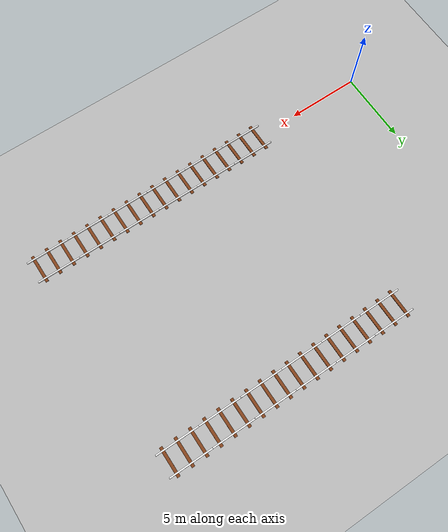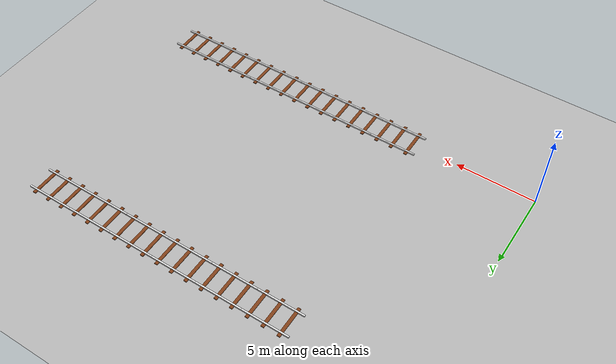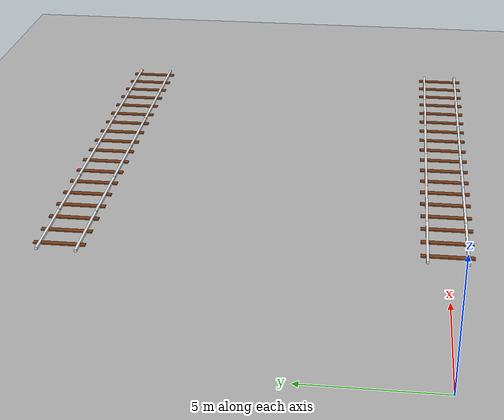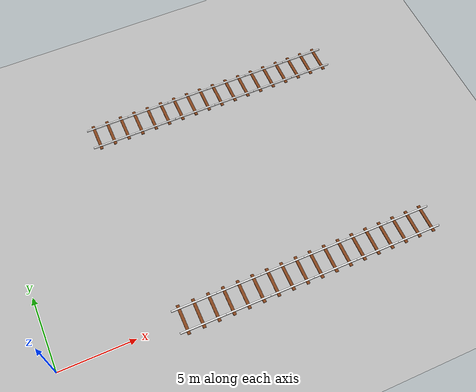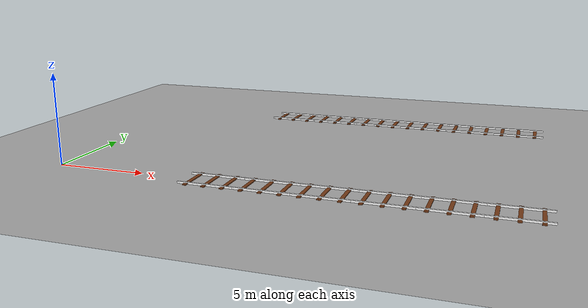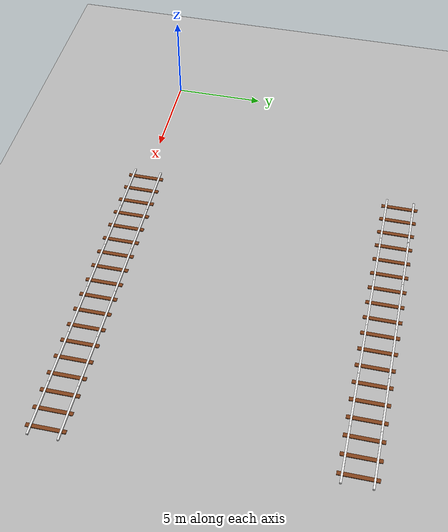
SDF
<sdf version="1.10">
 <world name="myworld">
  <model name="rail4">
   <static>true</static>
   <pose>9 0 0 0 0 0</pose>
   <link name="rail_link">
    <visual name="rail_left">
     <pose>0 0.75 0.050000000000000003 0 0 0</pose>
     <geometry><box><size>3 0.10000000000000001 0.10000000000000001</size></box></geometry>
     <material>
      <ambient>0.800000012 0.800000012 0.800000012 1</ambient>
      <diffuse>0.899999976 0.899999976 0.899999976 1</diffuse>
     </material>
    </visual>
    <visual name="rail_right">
     <pose>0 -0.75 0.050000000000000003 0 0 0</pose>
     <geometry><box><size>3 0.10000000000000001 0.10000000000000001</size></box></geometry>
     <material>
      <ambient>0.800000012 0.800000012 0.800000012 1</ambient>
      <diffuse>0.899999976 0.899999976 0.899999976 1</diffuse>
     </material>
    </visual>
    <visual name="traverse_1">
     <pose>1 0 0.025000000000000001 0 0 0</pose>
     <geometry><box><size>0.20000000000000001 2 0.050000000000000003</size></box></geometry>
     <material>
      <ambient>0.400000006 0.200000003 0.100000001 1</ambient>
      <diffuse>0.5 0.25 0.100000001 1</diffuse>
     </material>
    </visual>
    <visual name="traverse_2">
     <pose>0 0 0.025000000000000001 0 0 0</pose>
     <geometry><box><size>0.20000000000000001 2 0.050000000000000003</size></box></geometry>
     <material>
      <ambient>0.400000006 0.200000003 0.100000001 1</ambient>
      <diffuse>0.5 0.25 0.100000001 1</diffuse>
     </material>
    </visual>
    <visual name="traverse_3">
     <pose>-1 0 0.025000000000000001 0 0 0</pose>
     <geometry><box><size>0.20000000000000001 2 0.050000000000000003</size></box></geometry>
     <material>
      <ambient>0.400000006 0.200000003 0.100000001 1</ambient>
      <diffuse>0.5 0.25 0.100000001 1</diffuse>
     </material>
    </visual>
    <inertial>
     <mass>1</mass>
     <inertia><ixx>1</ixx><ixy>0</ixy><ixz>0</ixz><iyy>1</iyy><iyz>0</iyz><izz>1</izz></inertia>
    </inertial>
   </link>
  </model>
  <model name="rail5">
   <static>true</static>
   <pose>12 0 0 0 0 0</pose>
   <link name="rail_link">
    <visual name="rail_left">
     <pose>0 0.75 0.050000000000000003 0 0 0</pose>
     <geometry><box><size>3 0.10000000000000001 0.10000000000000001</size></box></geometry>
     <material>
      <ambient>0.800000012 0.800000012 0.800000012 1</ambient>
      <diffuse>0.899999976 0.899999976 0.899999976 1</diffuse>
     </material>
    </visual>
    <visual name="rail_right">
     <pose>0 -0.75 0.050000000000000003 0 0 0</pose>
     <geometry><box><size>3 0.10000000000000001 0.10000000000000001</size></box></geometry>
     <material>
      <ambient>0.800000012 0.800000012 0.800000012 1</ambient>
      <diffuse>0.899999976 0.899999976 0.899999976 1</diffuse>
     </material>
    </visual>
    <visual name="traverse_1">
     <pose>1 0 0.025000000000000001 0 0 0</pose>
     <geometry><box><size>0.20000000000000001 2 0.050000000000000003</size></box></geometry>
     <material>
      <ambient>0.400000006 0.200000003 0.100000001 1</ambient>
      <diffuse>0.5 0.25 0.100000001 1</diffuse>
     </material>
    </visual>
    <visual name="traverse_2">
     <pose>0 0 0.025000000000000001 0 0 0</pose>
     <geometry><box><size>0.20000000000000001 2 0.050000000000000003</size></box></geometry>
     <material>
      <ambient>0.400000006 0.200000003 0.100000001 1</ambient>
      <diffuse>0.5 0.25 0.100000001 1</diffuse>
     </material>
    </visual>
    <visual name="traverse_3">
     <pose>-1 0 0.025000000000000001 0 0 0</pose>
     <geometry><box><size>0.20000000000000001 2 0.050000000000000003</size></box></geometry>
     <material>
      <ambient>0.400000006 0.200000003 0.100000001 1</ambient>
      <diffuse>0.5 0.25 0.100000001 1</diffuse>
     </material>
    </visual>
    <inertial>
     <mass>1</mass>
     <inertia><ixx>1</ixx><ixy>0</ixy><ixz>0</ixz><iyy>1</iyy><iyz>0</iyz><izz>1</izz></inertia>
    </inertial>
   </link>
  </model>
  <model name="rail6">
   <static>true</static>
   <pose>15 0 0 0 0 0</pose>
   <link name="rail_link">
    <visual name="rail_left">
     <pose>0 0.75 0.050000000000000003 0 0 0</pose>
     <geometry><box><size>3 0.10000000000000001 0.10000000000000001</size></box></geometry>
     <material>
      <ambient>0.800000012 0.800000012 0.800000012 1</ambient>
      <diffuse>0.899999976 0.899999976 0.899999976 1</diffuse>
     </material>
    </visual>
    <visual name="rail_right">
     <pose>0 -0.75 0.050000000000000003 0 0 0</pose>
     <geometry><box><size>3 0.10000000000000001 0.10000000000000001</size></box></geometry>
     <material>
      <ambient>0.800000012 0.800000012 0.800000012 1</ambient>
      <diffuse>0.899999976 0.899999976 0.899999976 1</diffuse>
     </material>
    </visual>
    <visual name="traverse_1">
     <pose>1 0 0.025000000000000001 0 0 0</pose>
     <geometry><box><size>0.20000000000000001 2 0.050000000000000003</size></box></geometry>
     <material>
      <ambient>0.400000006 0.200000003 0.100000001 1</ambient>
      <diffuse>0.5 0.25 0.100000001 1</diffuse>
     </material>
    </visual>
    <visual name="traverse_2">
     <pose>0 0 0.025000000000000001 0 0 0</pose>
     <geometry><box><size>0.20000000000000001 2 0.050000000000000003</size></box></geometry>
     <material>
      <ambient>0.400000006 0.200000003 0.100000001 1</ambient>
      <diffuse>0.5 0.25 0.100000001 1</diffuse>
     </material>
    </visual>
    <visual name="traverse_3">
     <pose>-1 0 0.025000000000000001 0 0 0</pose>
     <geometry><box><size>0.20000000000000001 2 0.050000000000000003</size></box></geometry>
     <material>
      <ambient>0.400000006 0.200000003 0.100000001 1</ambient>
      <diffuse>0.5 0.25 0.100000001 1</diffuse>
     </material>
    </visual>
    <inertial>
     <mass>1</mass>
     <inertia><ixx>1</ixx><ixy>0</ixy><ixz>0</ixz><iyy>1</iyy><iyz>0</iyz><izz>1</izz></inertia>
    </inertial>
   </link>
  </model>
  <model name="rail7">
   <static>true</static>
   <pose>18 0 0 0 0 0</pose>
   <link name="rail_link">
    <visual name="rail_left">
     <pose>0 0.75 0.050000000000000003 0 0 0</pose>
     <geometry><box><size>3 0.10000000000000001 0.10000000000000001</size></box></geometry>
     <material>
      <ambient>0.800000012 0.800000012 0.800000012 1</ambient>
      <diffuse>0.899999976 0.899999976 0.899999976 1</diffuse>
     </material>
    </visual>
    <visual name="rail_right">
     <pose>0 -0.75 0.050000000000000003 0 0 0</pose>
     <geometry><box><size>3 0.10000000000000001 0.10000000000000001</size></box></geometry>
     <material>
      <ambient>0.800000012 0.800000012 0.800000012 1</ambient>
      <diffuse>0.899999976 0.899999976 0.899999976 1</diffuse>
     </material>
    </visual>
    <visual name="traverse_1">
     <pose>1 0 0.025000000000000001 0 0 0</pose>
     <geometry><box><size>0.20000000000000001 2 0.050000000000000003</size></box></geometry>
     <material>
      <ambient>0.400000006 0.200000003 0.100000001 1</ambient>
      <diffuse>0.5 0.25 0.100000001 1</diffuse>
     </material>
    </visual>
    <visual name="traverse_2">
     <pose>0 0 0.025000000000000001 0 0 0</pose>
     <geometry><box><size>0.20000000000000001 2 0.050000000000000003</size></box></geometry>
     <material>
      <ambient>0.400000006 0.200000003 0.100000001 1</ambient>
      <diffuse>0.5 0.25 0.100000001 1</diffuse>
     </material>
    </visual>
    <visual name="traverse_3">
     <pose>-1 0 0.025000000000000001 0 0 0</pose>
     <geometry><box><size>0.20000000000000001 2 0.050000000000000003</size></box></geometry>
     <material>
      <ambient>0.400000006 0.200000003 0.100000001 1</ambient>
      <diffuse>0.5 0.25 0.100000001 1</diffuse>
     </material>
    </visual>
    <inertial>
     <mass>1</mass>
     <inertia><ixx>1</ixx><ixy>0</ixy><ixz>0</ixz><iyy>1</iyy><iyz>0</iyz><izz>1</izz></inertia>
    </inertial>
   </link>
  </model>
  <model name="rail8">
   <static>true</static>
   <pose>21 0 0 0 0 0</pose>
   <link name="rail_link">
    <visual name="rail_left">
     <pose>0 0.75 0.050000000000000003 0 0 0</pose>
     <geometry><box><size>3 0.10000000000000001 0.10000000000000001</size></box></geometry>
     <material>
      <ambient>0.800000012 0.800000012 0.800000012 1</ambient>
      <diffuse>0.899999976 0.899999976 0.899999976 1</diffuse>
     </material>
    </visual>
    <visual name="rail_right">
     <pose>0 -0.75 0.050000000000000003 0 0 0</pose>
     <geometry><box><size>3 0.10000000000000001 0.10000000000000001</size></box></geometry>
     <material>
      <ambient>0.800000012 0.800000012 0.800000012 1</ambient>
      <diffuse>0.899999976 0.899999976 0.899999976 1</diffuse>
     </material>
    </visual>
    <visual name="traverse_1">
     <pose>1 0 0.025000000000000001 0 0 0</pose>
     <geometry><box><size>0.20000000000000001 2 0.050000000000000003</size></box></geometry>
     <material>
      <ambient>0.400000006 0.200000003 0.100000001 1</ambient>
      <diffuse>0.5 0.25 0.100000001 1</diffuse>
     </material>
    </visual>
    <visual name="traverse_2">
     <pose>0 0 0.025000000000000001 0 0 0</pose>
     <geometry><box><size>0.20000000000000001 2 0.050000000000000003</size></box></geometry>
     <material>
      <ambient>0.400000006 0.200000003 0.100000001 1</ambient>
      <diffuse>0.5 0.25 0.100000001 1</diffuse>
     </material>
    </visual>
    <visual name="traverse_3">
     <pose>-1 0 0.025000000000000001 0 0 0</pose>
     <geometry><box><size>0.20000000000000001 2 0.050000000000000003</size></box></geometry>
     <material>
      <ambient>0.400000006 0.200000003 0.100000001 1</ambient>
      <diffuse>0.5 0.25 0.100000001 1</diffuse>
     </material>
    </visual>
    <inertial>
     <mass>1</mass>
     <inertia><ixx>1</ixx><ixy>0</ixy><ixz>0</ixz><iyy>1</iyy><iyz>0</iyz><izz>1</izz></inertia>
    </inertial>
   </link>
  </model>
  <model name="rail9">
   <static>true</static>
   <pose>24 0 0 0 0 0</pose>
   <link name="rail_link">
    <visual name="rail_left">
     <pose>0 0.75 0.050000000000000003 0 0 0</pose>
     <geometry><box><size>3 0.10000000000000001 0.10000000000000001</size></box></geometry>
     <material>
      <ambient>0.800000012 0.800000012 0.800000012 1</ambient>
      <diffuse>0.899999976 0.899999976 0.899999976 1</diffuse>
     </material>
    </visual>
    <visual name="rail_right">
     <pose>0 -0.75 0.050000000000000003 0 0 0</pose>
     <geometry><box><size>3 0.10000000000000001 0.10000000000000001</size></box></geometry>
     <material>
      <ambient>0.800000012 0.800000012 0.800000012 1</ambient>
      <diffuse>0.899999976 0.899999976 0.899999976 1</diffuse>
     </material>
    </visual>
    <visual name="traverse_1">
     <pose>1 0 0.025000000000000001 0 0 0</pose>
     <geometry><box><size>0.20000000000000001 2 0.050000000000000003</size></box></geometry>
     <material>
      <ambient>0.400000006 0.200000003 0.100000001 1</ambient>
      <diffuse>0.5 0.25 0.100000001 1</diffuse>
     </material>
    </visual>
    <visual name="traverse_2">
     <pose>0 0 0.025000000000000001 0 0 0</pose>
     <geometry><box><size>0.20000000000000001 2 0.050000000000000003</size></box></geometry>
     <material>
      <ambient>0.400000006 0.200000003 0.100000001 1</ambient>
      <diffuse>0.5 0.25 0.100000001 1</diffuse>
     </material>
    </visual>
    <visual name="traverse_3">
     <pose>-1 0 0.025000000000000001 0 0 0</pose>
     <geometry><box><size>0.20000000000000001 2 0.050000000000000003</size></box></geometry>
     <material>
      <ambient>0.400000006 0.200000003 0.100000001 1</ambient>
      <diffuse>0.5 0.25 0.100000001 1</diffuse>
     </material>
    </visual>
    <inertial>
     <mass>1</mass>
     <inertia><ixx>1</ixx><ixy>0</ixy><ixz>0</ixz><iyy>1</iyy><iyz>0</iyz><izz>1</izz></inertia>
    </inertial>
   </link>
  </model>
  <model name="ground_plane">
   <static>true</static>
   <link name="link">
    <collision name="collision">
     <geometry><plane><normal>0 0 1</normal><size>1000 1000</size></plane></geometry>
    </collision>
    <visual name="visual">
     <geometry><plane><normal>0 0 1</normal><size>1000 1000</size></plane></geometry>
     <material>
      <ambient>0.699999988 0.699999988 0.699999988 1</ambient>
      <diffuse>0.699999988 0.699999988 0.699999988 1</diffuse>
     </material>
    </visual>
    <inertial>
     <mass>1</mass>
     <inertia><ixx>1</ixx><ixy>0</ixy><ixz>0</ixz><iyy>1</iyy><iyz>0</iyz><izz>1</izz></inertia>
    </inertial>
   </link>
  </model>
  <model name="rail1_4">
   <static>true</static>
   <pose>8.3704300000000007 14.5355499999999997 0 0 0 0</pose>
   <link name="rail_link">
    <visual name="rail_left">
     <pose>0 0.75 0.050000000000000003 0 0 0</pose>
     <geometry><box><size>3 0.10000000000000001 0.10000000000000001</size></box></geometry>
     <material>
      <ambient>0.800000012 0.800000012 0.800000012 1</ambient>
      <diffuse>0.899999976 0.899999976 0.899999976 1</diffuse>
     </material>
    </visual>
    <visual name="rail_right">
     <pose>0 -0.75 0.050000000000000003 0 0 0</pose>
     <geometry><box><size>3 0.10000000000000001 0.10000000000000001</size></box></geometry>
     <material>
      <ambient>0.800000012 0.800000012 0.800000012 1</ambient>
      <diffuse>0.899999976 0.899999976 0.899999976 1</diffuse>
     </material>
    </visual>
    <visual name="traverse_1">
     <pose>1 0 0.025000000000000001 0 0 0</pose>
     <geometry><box><size>0.20000000000000001 2 0.050000000000000003</size></box></geometry>
     <material>
      <ambient>0.400000006 0.200000003 0.100000001 1</ambient>
      <diffuse>0.5 0.25 0.100000001 1</diffuse>
     </material>
    </visual>
    <visual name="traverse_2">
     <pose>0 0 0.025000000000000001 0 0 0</pose>
     <geometry><box><size>0.20000000000000001 2 0.050000000000000003</size></box></geometry>
     <material>
      <ambient>0.400000006 0.200000003 0.100000001 1</ambient>
      <diffuse>0.5 0.25 0.100000001 1</diffuse>
     </material>
    </visual>
    <visual name="traverse_3">
     <pose>-1 0 0.025000000000000001 0 0 0</pose>
     <geometry><box><size>0.20000000000000001 2 0.050000000000000003</size></box></geometry>
     <material>
      <ambient>0.400000006 0.200000003 0.100000001 1</ambient>
      <diffuse>0.5 0.25 0.100000001 1</diffuse>
     </material>
    </visual>
   </link>
  </model>
  <model name="rail1_5">
   <static>true</static>
   <pose>11.376099999999999 14.5394899999999998 0 0 0 0</pose>
   <link name="rail_link">
    <visual name="rail_left">
     <pose>0 0.75 0.050000000000000003 0 0 0</pose>
     <geometry><box><size>3 0.10000000000000001 0.10000000000000001</size></box></geometry>
     <material>
      <ambient>0.800000012 0.800000012 0.800000012 1</ambient>
      <diffuse>0.899999976 0.899999976 0.899999976 1</diffuse>
     </material>
    </visual>
    <visual name="rail_right">
     <pose>0 -0.75 0.050000000000000003 0 0 0</pose>
     <geometry><box><size>3 0.10000000000000001 0.10000000000000001</size></box></geometry>
     <material>
      <ambient>0.800000012 0.800000012 0.800000012 1</ambient>
      <diffuse>0.899999976 0.899999976 0.899999976 1</diffuse>
     </material>
    </visual>
    <visual name="traverse_1">
     <pose>1 0 0.025000000000000001 0 0 0</pose>
     <geometry><box><size>0.20000000000000001 2 0.050000000000000003</size></box></geometry>
     <material>
      <ambient>0.400000006 0.200000003 0.100000001 1</ambient>
      <diffuse>0.5 0.25 0.100000001 1</diffuse>
     </material>
    </visual>
    <visual name="traverse_2">
     <pose>0 0 0.025000000000000001 0 0 0</pose>
     <geometry><box><size>0.20000000000000001 2 0.050000000000000003</size></box></geometry>
     <material>
      <ambient>0.400000006 0.200000003 0.100000001 1</ambient>
      <diffuse>0.5 0.25 0.100000001 1</diffuse>
     </material>
    </visual>
    <visual name="traverse_3">
     <pose>-1 0 0.025000000000000001 0 0 0</pose>
     <geometry><box><size>0.20000000000000001 2 0.050000000000000003</size></box></geometry>
     <material>
      <ambient>0.400000006 0.200000003 0.100000001 1</ambient>
      <diffuse>0.5 0.25 0.100000001 1</diffuse>
     </material>
    </visual>
   </link>
  </model>
  <model name="rail1_6">
   <static>true</static>
   <pose>14.379799999999999 14.5424100000000003 0 0 0 0</pose>
   <link name="rail_link">
    <visual name="rail_left">
     <pose>0 0.75 0.050000000000000003 0 0 0</pose>
     <geometry><box><size>3 0.10000000000000001 0.10000000000000001</size></box></geometry>
     <material>
      <ambient>0.800000012 0.800000012 0.800000012 1</ambient>
      <diffuse>0.899999976 0.899999976 0.899999976 1</diffuse>
     </material>
    </visual>
    <visual name="rail_right">
     <pose>0 -0.75 0.050000000000000003 0 0 0</pose>
     <geometry><box><size>3 0.10000000000000001 0.10000000000000001</size></box></geometry>
     <material>
      <ambient>0.800000012 0.800000012 0.800000012 1</ambient>
      <diffuse>0.899999976 0.899999976 0.899999976 1</diffuse>
     </material>
    </visual>
    <visual name="traverse_1">
     <pose>1 0 0.025000000000000001 0 0 0</pose>
     <geometry><box><size>0.20000000000000001 2 0.050000000000000003</size></box></geometry>
     <material>
      <ambient>0.400000006 0.200000003 0.100000001 1</ambient>
      <diffuse>0.5 0.25 0.100000001 1</diffuse>
     </material>
    </visual>
    <visual name="traverse_2">
     <pose>0 0 0.025000000000000001 0 0 0</pose>
     <geometry><box><size>0.20000000000000001 2 0.050000000000000003</size></box></geometry>
     <material>
      <ambient>0.400000006 0.200000003 0.100000001 1</ambient>
      <diffuse>0.5 0.25 0.100000001 1</diffuse>
     </material>
    </visual>
    <visual name="traverse_3">
     <pose>-1 0 0.025000000000000001 0 0 0</pose>
     <geometry><box><size>0.20000000000000001 2 0.050000000000000003</size></box></geometry>
     <material>
      <ambient>0.400000006 0.200000003 0.100000001 1</ambient>
      <diffuse>0.5 0.25 0.100000001 1</diffuse>
     </material>
    </visual>
   </link>
  </model>
  <model name="rail1_7">
   <static>true</static>
   <pose>17.378599999999999 14.5424800000000003 0 0 0 0</pose>
   <link name="rail_link">
    <visual name="rail_left">
     <pose>0 0.75 0.050000000000000003 0 0 0</pose>
     <geometry><box><size>3 0.10000000000000001 0.10000000000000001</size></box></geometry>
     <material>
      <ambient>0.800000012 0.800000012 0.800000012 1</ambient>
      <diffuse>0.899999976 0.899999976 0.899999976 1</diffuse>
     </material>
    </visual>
    <visual name="rail_right">
     <pose>0 -0.75 0.050000000000000003 0 0 0</pose>
     <geometry><box><size>3 0.10000000000000001 0.10000000000000001</size></box></geometry>
     <material>
      <ambient>0.800000012 0.800000012 0.800000012 1</ambient>
      <diffuse>0.899999976 0.899999976 0.899999976 1</diffuse>
     </material>
    </visual>
    <visual name="traverse_1">
     <pose>1 0 0.025000000000000001 0 0 0</pose>
     <geometry><box><size>0.20000000000000001 2 0.050000000000000003</size></box></geometry>
     <material>
      <ambient>0.400000006 0.200000003 0.100000001 1</ambient>
      <diffuse>0.5 0.25 0.100000001 1</diffuse>
     </material>
    </visual>
    <visual name="traverse_2">
     <pose>0 0 0.025000000000000001 0 0 0</pose>
     <geometry><box><size>0.20000000000000001 2 0.050000000000000003</size></box></geometry>
     <material>
      <ambient>0.400000006 0.200000003 0.100000001 1</ambient>
      <diffuse>0.5 0.25 0.100000001 1</diffuse>
     </material>
    </visual>
    <visual name="traverse_3">
     <pose>-1 0 0.025000000000000001 0 0 0</pose>
     <geometry><box><size>0.20000000000000001 2 0.050000000000000003</size></box></geometry>
     <material>
      <ambient>0.400000006 0.200000003 0.100000001 1</ambient>
      <diffuse>0.5 0.25 0.100000001 1</diffuse>
     </material>
    </visual>
   </link>
  </model>
  <model name="rail1_7_1">
   <static>true</static>
   <pose>20.386700000000001 14.5425700000000004 0 0 0 0</pose>
   <link name="rail_link">
    <visual name="rail_left">
     <pose>0 0.75 0.050000000000000003 0 0 0</pose>
     <geometry><box><size>3 0.10000000000000001 0.10000000000000001</size></box></geometry>
     <material>
      <ambient>0.800000012 0.800000012 0.800000012 1</ambient>
      <diffuse>0.899999976 0.899999976 0.899999976 1</diffuse>
     </material>
    </visual>
    <visual name="rail_right">
     <pose>0 -0.75 0.050000000000000003 0 0 0</pose>
     <geometry><box><size>3 0.10000000000000001 0.10000000000000001</size></box></geometry>
     <material>
      <ambient>0.800000012 0.800000012 0.800000012 1</ambient>
      <diffuse>0.899999976 0.899999976 0.899999976 1</diffuse>
     </material>
    </visual>
    <visual name="traverse_1">
     <pose>1 0 0.025000000000000001 0 0 0</pose>
     <geometry><box><size>0.20000000000000001 2 0.050000000000000003</size></box></geometry>
     <material>
      <ambient>0.400000006 0.200000003 0.100000001 1</ambient>
      <diffuse>0.5 0.25 0.100000001 1</diffuse>
     </material>
    </visual>
    <visual name="traverse_2">
     <pose>0 0 0.025000000000000001 0 0 0</pose>
     <geometry><box><size>0.20000000000000001 2 0.050000000000000003</size></box></geometry>
     <material>
      <ambient>0.400000006 0.200000003 0.100000001 1</ambient>
      <diffuse>0.5 0.25 0.100000001 1</diffuse>
     </material>
    </visual>
    <visual name="traverse_3">
     <pose>-1 0 0.025000000000000001 0 0 0</pose>
     <geometry><box><size>0.20000000000000001 2 0.050000000000000003</size></box></geometry>
     <material>
      <ambient>0.400000006 0.200000003 0.100000001 1</ambient>
      <diffuse>0.5 0.25 0.100000001 1</diffuse>
     </material>
    </visual>
   </link>
  </model>
  <model name="rail1_7_2">
   <static>true</static>
   <pose>23.386500000000002 14.54549 0 0 0 0</pose>
   <link name="rail_link">
    <visual name="rail_left">
     <pose>0 0.75 0.050000000000000003 0 0 0</pose>
     <geometry><box><size>3 0.10000000000000001 0.10000000000000001</size></box></geometry>
     <material>
      <ambient>0.800000012 0.800000012 0.800000012 1</ambient>
      <diffuse>0.899999976 0.899999976 0.899999976 1</diffuse>
     </material>
    </visual>
    <visual name="rail_right">
     <pose>0 -0.75 0.050000000000000003 0 0 0</pose>
     <geometry><box><size>3 0.10000000000000001 0.10000000000000001</size></box></geometry>
     <material>
      <ambient>0.800000012 0.800000012 0.800000012 1</ambient>
      <diffuse>0.899999976 0.899999976 0.899999976 1</diffuse>
     </material>
    </visual>
    <visual name="traverse_1">
     <pose>1 0 0.025000000000000001 0 0 0</pose>
     <geometry><box><size>0.20000000000000001 2 0.050000000000000003</size></box></geometry>
     <material>
      <ambient>0.400000006 0.200000003 0.100000001 1</ambient>
      <diffuse>0.5 0.25 0.100000001 1</diffuse>
     </material>
    </visual>
    <visual name="traverse_2">
     <pose>0 0 0.025000000000000001 0 0 0</pose>
     <geometry><box><size>0.20000000000000001 2 0.050000000000000003</size></box></geometry>
     <material>
      <ambient>0.400000006 0.200000003 0.100000001 1</ambient>
      <diffuse>0.5 0.25 0.100000001 1</diffuse>
     </material>
    </visual>
    <visual name="traverse_3">
     <pose>-1 0 0.025000000000000001 0 0 0</pose>
     <geometry><box><size>0.20000000000000001 2 0.050000000000000003</size></box></geometry>
     <material>
      <ambient>0.400000006 0.200000003 0.100000001 1</ambient>
      <diffuse>0.5 0.25 0.100000001 1</diffuse>
     </material>
    </visual>
   </link>
  </model>
 </world>
</sdf>
